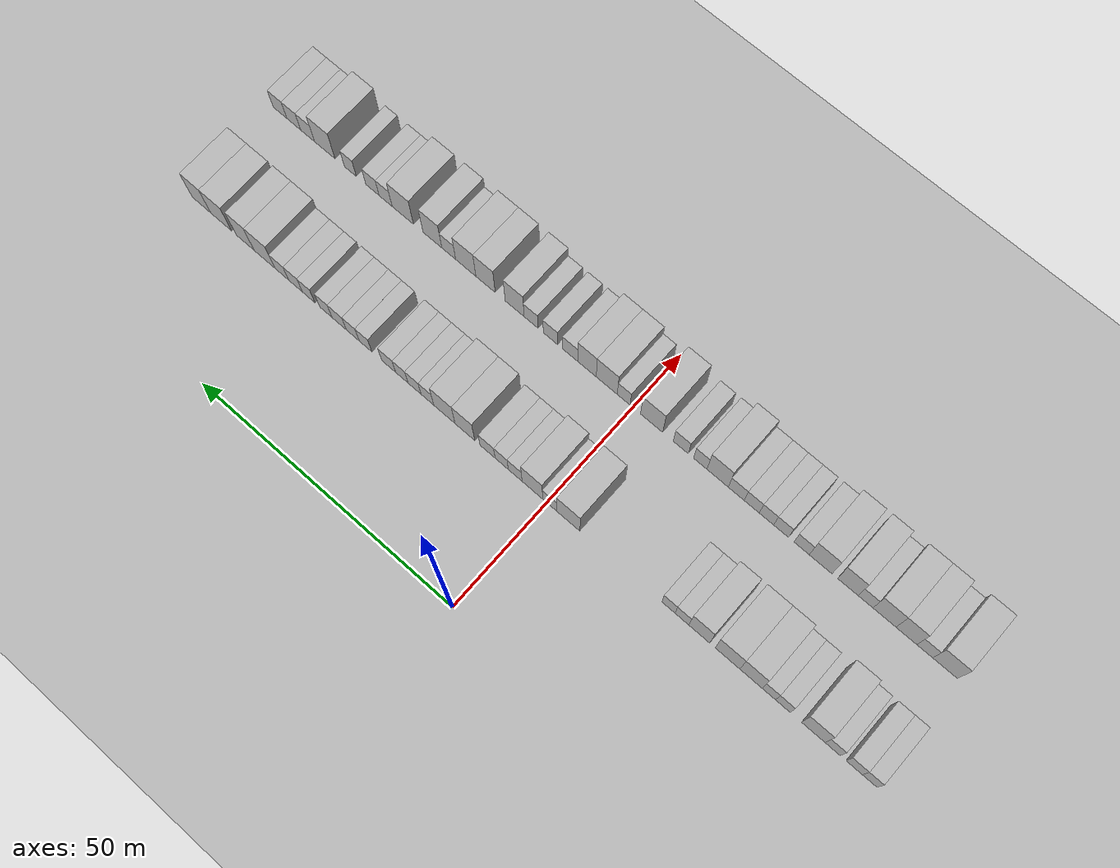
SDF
<sdf version="1.6">
 <world name="default">
  <include><name>ground_plane_1</name><uri>model://HANNAS_ground_plane</uri></include>
  <include>
   <name>ground_plane_2</name>
   <uri>model://HANNAS_ground_plane</uri>
   <pose>100 0 0  0 0 0</pose>
  </include>
  <model name="building_38">
   <static>1</static>
   <pose>25.0000 -58.9693 0 0.000000 0.000000 0.000000</pose>
   <link name="link">
    <pose>0 0 3.00 0 0 0</pose>
    <collision name="collision"><geometry><box><size>10.0000 2.5316 6.0000</size></box></geometry></collision>
    <visual name="visual">
     <cast_shadows>0</cast_shadows>
     <geometry><box><size>10.0000 2.5316 6.0000</size></box></geometry>
     <material>
      <script>
       <uri>model://HANNAS_wall/materials/scripts</uri>
       <uri>model://HANNAS_wall/materials/textures</uri>
       <name>vrc/HANNAS_wall</name>
      </script>
     </material>
    </visual>
   </link>
  </model>
  <model name="building_39">
   <static>1</static>
   <pose>25.0000 -56.2796 0 0.000000 0.000000 0.000000</pose>
   <link name="link">
    <pose>0 0 3.00 0 0 0</pose>
    <collision name="collision"><geometry><box><size>10.0000 2.8477 6.0000</size></box></geometry></collision>
    <visual name="visual">
     <cast_shadows>0</cast_shadows>
     <geometry><box><size>10.0000 2.8477 6.0000</size></box></geometry>
     <material>
      <script>
       <uri>model://HANNAS_wall/materials/scripts</uri>
       <uri>model://HANNAS_wall/materials/textures</uri>
       <name>vrc/HANNAS_wall</name>
      </script>
     </material>
    </visual>
   </link>
  </model>
  <model name="building_40">
   <static>1</static>
   <pose>25.0000 -52.5273 0 0.000000 0.000000 0.000000</pose>
   <link name="link">
    <pose>0 0 3.00 0 0 0</pose>
    <collision name="collision"><geometry><box><size>10.0000 2.6569 6.0000</size></box></geometry></collision>
    <visual name="visual">
     <cast_shadows>0</cast_shadows>
     <geometry><box><size>10.0000 2.6569 6.0000</size></box></geometry>
     <material>
      <script>
       <uri>model://HANNAS_wall/materials/scripts</uri>
       <uri>model://HANNAS_wall/materials/textures</uri>
       <name>vrc/HANNAS_wall</name>
      </script>
     </material>
    </visual>
   </link>
  </model>
  <model name="building_41">
   <static>1</static>
   <pose>25.0000 -49.1151 0 0.000000 0.000000 0.000000</pose>
   <link name="link">
    <pose>0 0 4.50 0 0 0</pose>
    <collision name="collision"><geometry><box><size>10.0000 4.1675 9.0000</size></box></geometry></collision>
    <visual name="visual">
     <cast_shadows>0</cast_shadows>
     <geometry><box><size>10.0000 4.1675 9.0000</size></box></geometry>
     <material>
      <script>
       <uri>model://HANNAS_wall/materials/scripts</uri>
       <uri>model://HANNAS_wall/materials/textures</uri>
       <name>vrc/HANNAS_wall</name>
      </script>
     </material>
    </visual>
   </link>
  </model>
  <model name="building_42">
   <static>1</static>
   <pose>25.0000 -43.7156 0 0.000000 0.000000 0.000000</pose>
   <link name="link">
    <pose>0 0 3.00 0 0 0</pose>
    <collision name="collision"><geometry><box><size>10.0000 2.6314 6.0000</size></box></geometry></collision>
    <visual name="visual">
     <cast_shadows>0</cast_shadows>
     <geometry><box><size>10.0000 2.6314 6.0000</size></box></geometry>
     <material>
      <script>
       <uri>model://HANNAS_wall/materials/scripts</uri>
       <uri>model://HANNAS_wall/materials/textures</uri>
       <name>vrc/HANNAS_wall</name>
      </script>
     </material>
    </visual>
   </link>
  </model>
  <model name="building_43">
   <static>1</static>
   <pose>25.0000 -41.1947 0 0.000000 0.000000 0.000000</pose>
   <link name="link">
    <pose>0 0 3.00 0 0 0</pose>
    <collision name="collision"><geometry><box><size>10.0000 2.4105 6.0000</size></box></geometry></collision>
    <visual name="visual">
     <cast_shadows>0</cast_shadows>
     <geometry><box><size>10.0000 2.4105 6.0000</size></box></geometry>
     <material>
      <script>
       <uri>model://HANNAS_wall/materials/scripts</uri>
       <uri>model://HANNAS_wall/materials/textures</uri>
       <name>vrc/HANNAS_wall</name>
      </script>
     </material>
    </visual>
   </link>
  </model>
  <model name="building_44">
   <static>1</static>
   <pose>25.0000 -37.9845 0 0.000000 0.000000 0.000000</pose>
   <link name="link">
    <pose>0 0 4.50 0 0 0</pose>
    <collision name="collision"><geometry><box><size>10.0000 4.0098 9.0000</size></box></geometry></collision>
    <visual name="visual">
     <cast_shadows>0</cast_shadows>
     <geometry><box><size>10.0000 4.0098 9.0000</size></box></geometry>
     <material>
      <script>
       <uri>model://HANNAS_wall/materials/scripts</uri>
       <uri>model://HANNAS_wall/materials/textures</uri>
       <name>vrc/HANNAS_wall</name>
      </script>
     </material>
    </visual>
   </link>
  </model>
  <model name="building_45">
   <static>1</static>
   <pose>25.0000 -33.7493 0 0.000000 0.000000 0.000000</pose>
   <link name="link">
    <pose>0 0 4.50 0 0 0</pose>
    <collision name="collision"><geometry><box><size>10.0000 4.4606 9.0000</size></box></geometry></collision>
    <visual name="visual">
     <cast_shadows>0</cast_shadows>
     <geometry><box><size>10.0000 4.4606 9.0000</size></box></geometry>
     <material>
      <script>
       <uri>model://HANNAS_wall/materials/scripts</uri>
       <uri>model://HANNAS_wall/materials/textures</uri>
       <name>vrc/HANNAS_wall</name>
      </script>
     </material>
    </visual>
   </link>
  </model>
  <model name="building_46">
   <static>1</static>
   <pose>25.0000 -28.6179 0 0.000000 0.000000 0.000000</pose>
   <link name="link">
    <pose>0 0 4.50 0 0 0</pose>
    <collision name="collision"><geometry><box><size>10.0000 3.8022 9.0000</size></box></geometry></collision>
    <visual name="visual">
     <cast_shadows>0</cast_shadows>
     <geometry><box><size>10.0000 3.8022 9.0000</size></box></geometry>
     <material>
      <script>
       <uri>model://HANNAS_wall/materials/scripts</uri>
       <uri>model://HANNAS_wall/materials/textures</uri>
       <name>vrc/HANNAS_wall</name>
      </script>
     </material>
    </visual>
   </link>
  </model>
  <model name="building_47">
   <static>1</static>
   <pose>25.0000 -25.4377 0 0.000000 0.000000 0.000000</pose>
   <link name="link">
    <pose>0 0 3.00 0 0 0</pose>
    <collision name="collision"><geometry><box><size>10.0000 2.5583 6.0000</size></box></geometry></collision>
    <visual name="visual">
     <cast_shadows>0</cast_shadows>
     <geometry><box><size>10.0000 2.5583 6.0000</size></box></geometry>
     <material>
      <script>
       <uri>model://HANNAS_wall/materials/scripts</uri>
       <uri>model://HANNAS_wall/materials/textures</uri>
       <name>vrc/HANNAS_wall</name>
      </script>
     </material>
    </visual>
   </link>
  </model>
  <model name="building_48">
   <static>1</static>
   <pose>25.0000 -22.9423 0 0.000000 0.000000 0.000000</pose>
   <link name="link">
    <pose>0 0 3.00 0 0 0</pose>
    <collision name="collision"><geometry><box><size>10.0000 2.4326 6.0000</size></box></geometry></collision>
    <visual name="visual">
     <cast_shadows>0</cast_shadows>
     <geometry><box><size>10.0000 2.4326 6.0000</size></box></geometry>
     <material>
      <script>
       <uri>model://HANNAS_wall/materials/scripts</uri>
       <uri>model://HANNAS_wall/materials/textures</uri>
       <name>vrc/HANNAS_wall</name>
      </script>
     </material>
    </visual>
   </link>
  </model>
  <model name="building_49">
   <static>1</static>
   <pose>25.0000 -4.1322 0 0.000000 0.000000 0.000000</pose>
   <link name="link">
    <pose>0 0 4.50 0 0 0</pose>
    <collision name="collision"><geometry><box><size>10.0000 4.3958 9.0000</size></box></geometry></collision>
    <visual name="visual">
     <cast_shadows>0</cast_shadows>
     <geometry><box><size>10.0000 4.3958 9.0000</size></box></geometry>
     <material>
      <script>
       <uri>model://HANNAS_wall/materials/scripts</uri>
       <uri>model://HANNAS_wall/materials/textures</uri>
       <name>vrc/HANNAS_wall</name>
      </script>
     </material>
    </visual>
   </link>
  </model>
  <model name="building_50">
   <static>1</static>
   <pose>25.0000 -0.5826 0 0.000000 0.000000 0.000000</pose>
   <link name="link">
    <pose>0 0 3.00 0 0 0</pose>
    <collision name="collision"><geometry><box><size>10.0000 2.7035 6.0000</size></box></geometry></collision>
    <visual name="visual">
     <cast_shadows>0</cast_shadows>
     <geometry><box><size>10.0000 2.7035 6.0000</size></box></geometry>
     <material>
      <script>
       <uri>model://HANNAS_wall/materials/scripts</uri>
       <uri>model://HANNAS_wall/materials/textures</uri>
       <name>vrc/HANNAS_wall</name>
      </script>
     </material>
    </visual>
   </link>
  </model>
  <model name="building_51">
   <static>1</static>
   <pose>25.0000 2.7589 0 0.000000 0.000000 0.000000</pose>
   <link name="link">
    <pose>0 0 4.50 0 0 0</pose>
    <collision name="collision"><geometry><box><size>10.0000 3.9795 9.0000</size></box></geometry></collision>
    <visual name="visual">
     <cast_shadows>0</cast_shadows>
     <geometry><box><size>10.0000 3.9795 9.0000</size></box></geometry>
     <material>
      <script>
       <uri>model://HANNAS_wall/materials/scripts</uri>
       <uri>model://HANNAS_wall/materials/textures</uri>
       <name>vrc/HANNAS_wall</name>
      </script>
     </material>
    </visual>
   </link>
  </model>
  <model name="building_52">
   <static>1</static>
   <pose>25.0000 6.0873 0 0.000000 0.000000 0.000000</pose>
   <link name="link">
    <pose>0 0 3.00 0 0 0</pose>
    <collision name="collision"><geometry><box><size>10.0000 2.6772 6.0000</size></box></geometry></collision>
    <visual name="visual">
     <cast_shadows>0</cast_shadows>
     <geometry><box><size>10.0000 2.6772 6.0000</size></box></geometry>
     <material>
      <script>
       <uri>model://HANNAS_wall/materials/scripts</uri>
       <uri>model://HANNAS_wall/materials/textures</uri>
       <name>vrc/HANNAS_wall</name>
      </script>
     </material>
    </visual>
   </link>
  </model>
  <model name="building_53">
   <static>1</static>
   <pose>25.0000 8.7115 0 0.000000 0.000000 0.000000</pose>
   <link name="link">
    <pose>0 0 3.00 0 0 0</pose>
    <collision name="collision"><geometry><box><size>10.0000 2.5713 6.0000</size></box></geometry></collision>
    <visual name="visual">
     <cast_shadows>0</cast_shadows>
     <geometry><box><size>10.0000 2.5713 6.0000</size></box></geometry>
     <material>
      <script>
       <uri>model://HANNAS_wall/materials/scripts</uri>
       <uri>model://HANNAS_wall/materials/textures</uri>
       <name>vrc/HANNAS_wall</name>
      </script>
     </material>
    </visual>
   </link>
  </model>
  <model name="building_54">
   <static>1</static>
   <pose>25.0000 11.4802 0 0.000000 0.000000 0.000000</pose>
   <link name="link">
    <pose>0 0 3.00 0 0 0</pose>
    <collision name="collision"><geometry><box><size>10.0000 2.9660 6.0000</size></box></geometry></collision>
    <visual name="visual">
     <cast_shadows>0</cast_shadows>
     <geometry><box><size>10.0000 2.9660 6.0000</size></box></geometry>
     <material>
      <script>
       <uri>model://HANNAS_wall/materials/scripts</uri>
       <uri>model://HANNAS_wall/materials/textures</uri>
       <name>vrc/HANNAS_wall</name>
      </script>
     </material>
    </visual>
   </link>
  </model>
  <model name="building_55">
   <static>1</static>
   <pose>25.0000 15.9163 0 0.000000 0.000000 0.000000</pose>
   <link name="link">
    <pose>0 0 4.50 0 0 0</pose>
    <collision name="collision"><geometry><box><size>10.0000 3.9062 9.0000</size></box></geometry></collision>
    <visual name="visual">
     <cast_shadows>0</cast_shadows>
     <geometry><box><size>10.0000 3.9062 9.0000</size></box></geometry>
     <material>
      <script>
       <uri>model://HANNAS_wall/materials/scripts</uri>
       <uri>model://HANNAS_wall/materials/textures</uri>
       <name>vrc/HANNAS_wall</name>
      </script>
     </material>
    </visual>
   </link>
  </model>
  <model name="building_56">
   <static>1</static>
   <pose>25.0000 19.9657 0 0.000000 0.000000 0.000000</pose>
   <link name="link">
    <pose>0 0 4.50 0 0 0</pose>
    <collision name="collision"><geometry><box><size>10.0000 4.1926 9.0000</size></box></geometry></collision>
    <visual name="visual">
     <cast_shadows>0</cast_shadows>
     <geometry><box><size>10.0000 4.1926 9.0000</size></box></geometry>
     <material>
      <script>
       <uri>model://HANNAS_wall/materials/scripts</uri>
       <uri>model://HANNAS_wall/materials/textures</uri>
       <name>vrc/HANNAS_wall</name>
      </script>
     </material>
    </visual>
   </link>
  </model>
  <model name="building_57">
   <static>1</static>
   <pose>25.0000 23.3356 0 0.000000 0.000000 0.000000</pose>
   <link name="link">
    <pose>0 0 3.00 0 0 0</pose>
    <collision name="collision"><geometry><box><size>10.0000 2.5472 6.0000</size></box></geometry></collision>
    <visual name="visual">
     <cast_shadows>0</cast_shadows>
     <geometry><box><size>10.0000 2.5472 6.0000</size></box></geometry>
     <material>
      <script>
       <uri>model://HANNAS_wall/materials/scripts</uri>
       <uri>model://HANNAS_wall/materials/textures</uri>
       <name>vrc/HANNAS_wall</name>
      </script>
     </material>
    </visual>
   </link>
  </model>
  <model name="building_58">
   <static>1</static>
   <pose>25.0000 25.9146 0 0.000000 0.000000 0.000000</pose>
   <link name="link">
    <pose>0 0 3.00 0 0 0</pose>
    <collision name="collision"><geometry><box><size>10.0000 2.6108 6.0000</size></box></geometry></collision>
    <visual name="visual">
     <cast_shadows>0</cast_shadows>
     <geometry><box><size>10.0000 2.6108 6.0000</size></box></geometry>
     <material>
      <script>
       <uri>model://HANNAS_wall/materials/scripts</uri>
       <uri>model://HANNAS_wall/materials/textures</uri>
       <name>vrc/HANNAS_wall</name>
      </script>
     </material>
    </visual>
   </link>
  </model>
  <model name="building_59">
   <static>1</static>
   <pose>25.0000 28.4655 0 0.000000 0.000000 0.000000</pose>
   <link name="link">
    <pose>0 0 3.00 0 0 0</pose>
    <collision name="collision"><geometry><box><size>10.0000 2.4911 6.0000</size></box></geometry></collision>
    <visual name="visual">
     <cast_shadows>0</cast_shadows>
     <geometry><box><size>10.0000 2.4911 6.0000</size></box></geometry>
     <material>
      <script>
       <uri>model://HANNAS_wall/materials/scripts</uri>
       <uri>model://HANNAS_wall/materials/textures</uri>
       <name>vrc/HANNAS_wall</name>
      </script>
     </material>
    </visual>
   </link>
  </model>
  <model name="building_60">
   <static>1</static>
   <pose>25.0000 31.1306 0 0.000000 0.000000 0.000000</pose>
   <link name="link">
    <pose>0 0 3.00 0 0 0</pose>
    <collision name="collision"><geometry><box><size>10.0000 2.8390 6.0000</size></box></geometry></collision>
    <visual name="visual">
     <cast_shadows>0</cast_shadows>
     <geometry><box><size>10.0000 2.8390 6.0000</size></box></geometry>
     <material>
      <script>
       <uri>model://HANNAS_wall/materials/scripts</uri>
       <uri>model://HANNAS_wall/materials/textures</uri>
       <name>vrc/HANNAS_wall</name>
      </script>
     </material>
    </visual>
   </link>
  </model>
  <model name="building_61">
   <static>1</static>
   <pose>25.0000 35.8308 0 0.000000 0.000000 0.000000</pose>
   <link name="link">
    <pose>0 0 3.00 0 0 0</pose>
    <collision name="collision"><geometry><box><size>10.0000 2.5614 6.0000</size></box></geometry></collision>
    <visual name="visual">
     <cast_shadows>0</cast_shadows>
     <geometry><box><size>10.0000 2.5614 6.0000</size></box></geometry>
     <material>
      <script>
       <uri>model://HANNAS_wall/materials/scripts</uri>
       <uri>model://HANNAS_wall/materials/textures</uri>
       <name>vrc/HANNAS_wall</name>
      </script>
     </material>
    </visual>
   </link>
  </model>
  <model name="building_62">
   <static>1</static>
   <pose>25.0000 38.4246 0 0.000000 0.000000 0.000000</pose>
   <link name="link">
    <pose>0 0 3.00 0 0 0</pose>
    <collision name="collision"><geometry><box><size>10.0000 2.6260 6.0000</size></box></geometry></collision>
    <visual name="visual">
     <cast_shadows>0</cast_shadows>
     <geometry><box><size>10.0000 2.6260 6.0000</size></box></geometry>
     <material>
      <script>
       <uri>model://HANNAS_wall/materials/scripts</uri>
       <uri>model://HANNAS_wall/materials/textures</uri>
       <name>vrc/HANNAS_wall</name>
      </script>
     </material>
    </visual>
   </link>
  </model>
  <model name="building_63">
   <static>1</static>
   <pose>25.0000 41.2061 0 0.000000 0.000000 0.000000</pose>
   <link name="link">
    <pose>0 0 3.00 0 0 0</pose>
    <collision name="collision"><geometry><box><size>10.0000 2.9372 6.0000</size></box></geometry></collision>
    <visual name="visual">
     <cast_shadows>0</cast_shadows>
     <geometry><box><size>10.0000 2.9372 6.0000</size></box></geometry>
     <material>
      <script>
       <uri>model://HANNAS_wall/materials/scripts</uri>
       <uri>model://HANNAS_wall/materials/textures</uri>
       <name>vrc/HANNAS_wall</name>
      </script>
     </material>
    </visual>
   </link>
  </model>
  <model name="building_64">
   <static>1</static>
   <pose>25.0000 43.9478 0 0.000000 0.000000 0.000000</pose>
   <link name="link">
    <pose>0 0 3.00 0 0 0</pose>
    <collision name="collision"><geometry><box><size>10.0000 2.5462 6.0000</size></box></geometry></collision>
    <visual name="visual">
     <cast_shadows>0</cast_shadows>
     <geometry><box><size>10.0000 2.5462 6.0000</size></box></geometry>
     <material>
      <script>
       <uri>model://HANNAS_wall/materials/scripts</uri>
       <uri>model://HANNAS_wall/materials/textures</uri>
       <name>vrc/HANNAS_wall</name>
      </script>
     </material>
    </visual>
   </link>
  </model>
  <model name="building_65">
   <static>1</static>
   <pose>25.0000 47.5077 0 0.000000 0.000000 0.000000</pose>
   <link name="link">
    <pose>0 0 3.00 0 0 0</pose>
    <collision name="collision"><geometry><box><size>10.0000 2.5735 6.0000</size></box></geometry></collision>
    <visual name="visual">
     <cast_shadows>0</cast_shadows>
     <geometry><box><size>10.0000 2.5735 6.0000</size></box></geometry>
     <material>
      <script>
       <uri>model://HANNAS_wall/materials/scripts</uri>
       <uri>model://HANNAS_wall/materials/textures</uri>
       <name>vrc/HANNAS_wall</name>
      </script>
     </material>
    </visual>
   </link>
  </model>
  <model name="building_66">
   <static>1</static>
   <pose>25.0000 50.2321 0 0.000000 0.000000 0.000000</pose>
   <link name="link">
    <pose>0 0 3.00 0 0 0</pose>
    <collision name="collision"><geometry><box><size>10.0000 2.8752 6.0000</size></box></geometry></collision>
    <visual name="visual">
     <cast_shadows>0</cast_shadows>
     <geometry><box><size>10.0000 2.8752 6.0000</size></box></geometry>
     <material>
      <script>
       <uri>model://HANNAS_wall/materials/scripts</uri>
       <uri>model://HANNAS_wall/materials/textures</uri>
       <name>vrc/HANNAS_wall</name>
      </script>
     </material>
    </visual>
   </link>
  </model>
  <model name="building_67">
   <static>1</static>
   <pose>25.0000 53.1093 0 0.000000 0.000000 0.000000</pose>
   <link name="link">
    <pose>0 0 3.00 0 0 0</pose>
    <collision name="collision"><geometry><box><size>10.0000 2.8793 6.0000</size></box></geometry></collision>
    <visual name="visual">
     <cast_shadows>0</cast_shadows>
     <geometry><box><size>10.0000 2.8793 6.0000</size></box></geometry>
     <material>
      <script>
       <uri>model://HANNAS_wall/materials/scripts</uri>
       <uri>model://HANNAS_wall/materials/textures</uri>
       <name>vrc/HANNAS_wall</name>
      </script>
     </material>
    </visual>
   </link>
  </model>
  <model name="building_68">
   <static>1</static>
   <pose>25.0000 56.7665 0 0.000000 0.000000 0.000000</pose>
   <link name="link">
    <pose>0 0 4.50 0 0 0</pose>
    <collision name="collision"><geometry><box><size>10.0000 4.4350 9.0000</size></box></geometry></collision>
    <visual name="visual">
     <cast_shadows>0</cast_shadows>
     <geometry><box><size>10.0000 4.4350 9.0000</size></box></geometry>
     <material>
      <script>
       <uri>model://HANNAS_wall/materials/scripts</uri>
       <uri>model://HANNAS_wall/materials/textures</uri>
       <name>vrc/HANNAS_wall</name>
      </script>
     </material>
    </visual>
   </link>
  </model>
  <model name="building_69">
   <static>1</static>
   <pose>25.0000 60.8629 0 0.000000 0.000000 0.000000</pose>
   <link name="link">
    <pose>0 0 4.50 0 0 0</pose>
    <collision name="collision"><geometry><box><size>10.0000 3.7578 9.0000</size></box></geometry></collision>
    <visual name="visual">
     <cast_shadows>0</cast_shadows>
     <geometry><box><size>10.0000 3.7578 9.0000</size></box></geometry>
     <material>
      <script>
       <uri>model://HANNAS_wall/materials/scripts</uri>
       <uri>model://HANNAS_wall/materials/textures</uri>
       <name>vrc/HANNAS_wall</name>
      </script>
     </material>
    </visual>
   </link>
  </model>
  <model name="building_70">
   <static>1</static>
   <pose>25.0000 65.9792 0 0.000000 0.000000 0.000000</pose>
   <link name="link">
    <pose>0 0 4.50 0 0 0</pose>
    <collision name="collision"><geometry><box><size>10.0000 4.4748 9.0000</size></box></geometry></collision>
    <visual name="visual">
     <cast_shadows>0</cast_shadows>
     <geometry><box><size>10.0000 4.4748 9.0000</size></box></geometry>
     <material>
      <script>
       <uri>model://HANNAS_wall/materials/scripts</uri>
       <uri>model://HANNAS_wall/materials/textures</uri>
       <name>vrc/HANNAS_wall</name>
      </script>
     </material>
    </visual>
   </link>
  </model>
  <model name="building_71">
   <static>1</static>
   <pose>25.0000 70.2125 0 0.000000 0.000000 0.000000</pose>
   <link name="link">
    <pose>0 0 4.50 0 0 0</pose>
    <collision name="collision"><geometry><box><size>10.0000 3.9920 9.0000</size></box></geometry></collision>
    <visual name="visual">
     <cast_shadows>0</cast_shadows>
     <geometry><box><size>10.0000 3.9920 9.0000</size></box></geometry>
     <material>
      <script>
       <uri>model://HANNAS_wall/materials/scripts</uri>
       <uri>model://HANNAS_wall/materials/textures</uri>
       <name>vrc/HANNAS_wall</name>
      </script>
     </material>
    </visual>
   </link>
  </model>
  <model name="building_138">
   <static>1</static>
   <pose>44.0000 -57.4191 0 0.000000 0.000000 0.000000</pose>
   <link name="link">
    <pose>0 0 4.50 0 0 0</pose>
    <collision name="collision"><geometry><box><size>10.0000 4.3302 9.0000</size></box></geometry></collision>
    <visual name="visual">
     <cast_shadows>0</cast_shadows>
     <geometry><box><size>10.0000 4.3302 9.0000</size></box></geometry>
     <material>
      <script>
       <uri>model://HANNAS_wall/materials/scripts</uri>
       <uri>model://HANNAS_wall/materials/textures</uri>
       <name>vrc/HANNAS_wall</name>
      </script>
     </material>
    </visual>
   </link>
  </model>
  <model name="building_139">
   <static>1</static>
   <pose>44.0000 -53.8535 0 0.000000 0.000000 0.000000</pose>
   <link name="link">
    <pose>0 0 3.00 0 0 0</pose>
    <collision name="collision"><geometry><box><size>10.0000 2.8010 6.0000</size></box></geometry></collision>
    <visual name="visual">
     <cast_shadows>0</cast_shadows>
     <geometry><box><size>10.0000 2.8010 6.0000</size></box></geometry>
     <material>
      <script>
       <uri>model://HANNAS_wall/materials/scripts</uri>
       <uri>model://HANNAS_wall/materials/textures</uri>
       <name>vrc/HANNAS_wall</name>
      </script>
     </material>
    </visual>
   </link>
  </model>
  <model name="building_140">
   <static>1</static>
   <pose>44.0000 -50.6065 0 0.000000 0.000000 0.000000</pose>
   <link name="link">
    <pose>0 0 4.50 0 0 0</pose>
    <collision name="collision"><geometry><box><size>10.0000 3.6931 9.0000</size></box></geometry></collision>
    <visual name="visual">
     <cast_shadows>0</cast_shadows>
     <geometry><box><size>10.0000 3.6931 9.0000</size></box></geometry>
     <material>
      <script>
       <uri>model://HANNAS_wall/materials/scripts</uri>
       <uri>model://HANNAS_wall/materials/textures</uri>
       <name>vrc/HANNAS_wall</name>
      </script>
     </material>
    </visual>
   </link>
  </model>
  <model name="building_141">
   <static>1</static>
   <pose>44.0000 -46.7105 0 0.000000 0.000000 0.000000</pose>
   <link name="link">
    <pose>0 0 4.50 0 0 0</pose>
    <collision name="collision"><geometry><box><size>10.0000 4.0988 9.0000</size></box></geometry></collision>
    <visual name="visual">
     <cast_shadows>0</cast_shadows>
     <geometry><box><size>10.0000 4.0988 9.0000</size></box></geometry>
     <material>
      <script>
       <uri>model://HANNAS_wall/materials/scripts</uri>
       <uri>model://HANNAS_wall/materials/textures</uri>
       <name>vrc/HANNAS_wall</name>
      </script>
     </material>
    </visual>
   </link>
  </model>
  <model name="building_142">
   <static>1</static>
   <pose>44.0000 -43.3327 0 0.000000 0.000000 0.000000</pose>
   <link name="link">
    <pose>0 0 3.00 0 0 0</pose>
    <collision name="collision"><geometry><box><size>10.0000 2.6569 6.0000</size></box></geometry></collision>
    <visual name="visual">
     <cast_shadows>0</cast_shadows>
     <geometry><box><size>10.0000 2.6569 6.0000</size></box></geometry>
     <material>
      <script>
       <uri>model://HANNAS_wall/materials/scripts</uri>
       <uri>model://HANNAS_wall/materials/textures</uri>
       <name>vrc/HANNAS_wall</name>
      </script>
     </material>
    </visual>
   </link>
  </model>
  <model name="building_143">
   <static>1</static>
   <pose>44.0000 -40.1524 0 0.000000 0.000000 0.000000</pose>
   <link name="link">
    <pose>0 0 4.50 0 0 0</pose>
    <collision name="collision"><geometry><box><size>10.0000 3.7035 9.0000</size></box></geometry></collision>
    <visual name="visual">
     <cast_shadows>0</cast_shadows>
     <geometry><box><size>10.0000 3.7035 9.0000</size></box></geometry>
     <material>
      <script>
       <uri>model://HANNAS_wall/materials/scripts</uri>
       <uri>model://HANNAS_wall/materials/textures</uri>
       <name>vrc/HANNAS_wall</name>
      </script>
     </material>
    </visual>
   </link>
  </model>
  <model name="building_144">
   <static>1</static>
   <pose>44.0000 -35.2264 0 0.000000 0.000000 0.000000</pose>
   <link name="link">
    <pose>0 0 4.50 0 0 0</pose>
    <collision name="collision"><geometry><box><size>10.0000 4.1486 9.0000</size></box></geometry></collision>
    <visual name="visual">
     <cast_shadows>0</cast_shadows>
     <geometry><box><size>10.0000 4.1486 9.0000</size></box></geometry>
     <material>
      <script>
       <uri>model://HANNAS_wall/materials/scripts</uri>
       <uri>model://HANNAS_wall/materials/textures</uri>
       <name>vrc/HANNAS_wall</name>
      </script>
     </material>
    </visual>
   </link>
  </model>
  <model name="building_145">
   <static>1</static>
   <pose>44.0000 -31.7477 0 0.000000 0.000000 0.000000</pose>
   <link name="link">
    <pose>0 0 3.00 0 0 0</pose>
    <collision name="collision"><geometry><box><size>10.0000 2.8086 6.0000</size></box></geometry></collision>
    <visual name="visual">
     <cast_shadows>0</cast_shadows>
     <geometry><box><size>10.0000 2.8086 6.0000</size></box></geometry>
     <material>
      <script>
       <uri>model://HANNAS_wall/materials/scripts</uri>
       <uri>model://HANNAS_wall/materials/textures</uri>
       <name>vrc/HANNAS_wall</name>
      </script>
     </material>
    </visual>
   </link>
  </model>
  <model name="building_146">
   <static>1</static>
   <pose>44.0000 -27.9752 0 0.000000 0.000000 0.000000</pose>
   <link name="link">
    <pose>0 0 3.00 0 0 0</pose>
    <collision name="collision"><geometry><box><size>10.0000 2.7364 6.0000</size></box></geometry></collision>
    <visual name="visual">
     <cast_shadows>0</cast_shadows>
     <geometry><box><size>10.0000 2.7364 6.0000</size></box></geometry>
     <material>
      <script>
       <uri>model://HANNAS_wall/materials/scripts</uri>
       <uri>model://HANNAS_wall/materials/textures</uri>
       <name>vrc/HANNAS_wall</name>
      </script>
     </material>
    </visual>
   </link>
  </model>
  <model name="building_147">
   <static>1</static>
   <pose>44.0000 -25.2761 0 0.000000 0.000000 0.000000</pose>
   <link name="link">
    <pose>0 0 3.00 0 0 0</pose>
    <collision name="collision"><geometry><box><size>10.0000 2.6619 6.0000</size></box></geometry></collision>
    <visual name="visual">
     <cast_shadows>0</cast_shadows>
     <geometry><box><size>10.0000 2.6619 6.0000</size></box></geometry>
     <material>
      <script>
       <uri>model://HANNAS_wall/materials/scripts</uri>
       <uri>model://HANNAS_wall/materials/textures</uri>
       <name>vrc/HANNAS_wall</name>
      </script>
     </material>
    </visual>
   </link>
  </model>
  <model name="building_148">
   <static>1</static>
   <pose>44.0000 -22.5445 0 0.000000 0.000000 0.000000</pose>
   <link name="link">
    <pose>0 0 3.00 0 0 0</pose>
    <collision name="collision"><geometry><box><size>10.0000 2.8013 6.0000</size></box></geometry></collision>
    <visual name="visual">
     <cast_shadows>0</cast_shadows>
     <geometry><box><size>10.0000 2.8013 6.0000</size></box></geometry>
     <material>
      <script>
       <uri>model://HANNAS_wall/materials/scripts</uri>
       <uri>model://HANNAS_wall/materials/textures</uri>
       <name>vrc/HANNAS_wall</name>
      </script>
     </material>
    </visual>
   </link>
  </model>
  <model name="building_149">
   <static>1</static>
   <pose>44.0000 -19.6565 0 0.000000 0.000000 0.000000</pose>
   <link name="link">
    <pose>0 0 3.00 0 0 0</pose>
    <collision name="collision"><geometry><box><size>10.0000 2.9746 6.0000</size></box></geometry></collision>
    <visual name="visual">
     <cast_shadows>0</cast_shadows>
     <geometry><box><size>10.0000 2.9746 6.0000</size></box></geometry>
     <material>
      <script>
       <uri>model://HANNAS_wall/materials/scripts</uri>
       <uri>model://HANNAS_wall/materials/textures</uri>
       <name>vrc/HANNAS_wall</name>
      </script>
     </material>
    </visual>
   </link>
  </model>
  <model name="building_150">
   <static>1</static>
   <pose>44.0000 -16.1676 0 0.000000 0.000000 0.000000</pose>
   <link name="link">
    <pose>0 0 4.50 0 0 0</pose>
    <collision name="collision"><geometry><box><size>10.0000 4.0032 9.0000</size></box></geometry></collision>
    <visual name="visual">
     <cast_shadows>0</cast_shadows>
     <geometry><box><size>10.0000 4.0032 9.0000</size></box></geometry>
     <material>
      <script>
       <uri>model://HANNAS_wall/materials/scripts</uri>
       <uri>model://HANNAS_wall/materials/textures</uri>
       <name>vrc/HANNAS_wall</name>
      </script>
     </material>
    </visual>
   </link>
  </model>
  <model name="building_151">
   <static>1</static>
   <pose>44.0000 -12.9016 0 0.000000 0.000000 0.000000</pose>
   <link name="link">
    <pose>0 0 3.00 0 0 0</pose>
    <collision name="collision"><geometry><box><size>10.0000 2.5290 6.0000</size></box></geometry></collision>
    <visual name="visual">
     <cast_shadows>0</cast_shadows>
     <geometry><box><size>10.0000 2.5290 6.0000</size></box></geometry>
     <material>
      <script>
       <uri>model://HANNAS_wall/materials/scripts</uri>
       <uri>model://HANNAS_wall/materials/textures</uri>
       <name>vrc/HANNAS_wall</name>
      </script>
     </material>
    </visual>
   </link>
  </model>
  <model name="building_152">
   <static>1</static>
   <pose>44.0000 -9.1978 0 0.000000 0.000000 0.000000</pose>
   <link name="link">
    <pose>0 0 3.00 0 0 0</pose>
    <collision name="collision"><geometry><box><size>10.0000 2.8784 6.0000</size></box></geometry></collision>
    <visual name="visual">
     <cast_shadows>0</cast_shadows>
     <geometry><box><size>10.0000 2.8784 6.0000</size></box></geometry>
     <material>
      <script>
       <uri>model://HANNAS_wall/materials/scripts</uri>
       <uri>model://HANNAS_wall/materials/textures</uri>
       <name>vrc/HANNAS_wall</name>
      </script>
     </material>
    </visual>
   </link>
  </model>
  <model name="building_153">
   <static>1</static>
   <pose>44.0000 -3.6257 0 0.000000 0.000000 0.000000</pose>
   <link name="link">
    <pose>0 0 4.50 0 0 0</pose>
    <collision name="collision"><geometry><box><size>10.0000 4.2658 9.0000</size></box></geometry></collision>
    <visual name="visual">
     <cast_shadows>0</cast_shadows>
     <geometry><box><size>10.0000 4.2658 9.0000</size></box></geometry>
     <material>
      <script>
       <uri>model://HANNAS_wall/materials/scripts</uri>
       <uri>model://HANNAS_wall/materials/textures</uri>
       <name>vrc/HANNAS_wall</name>
      </script>
     </material>
    </visual>
   </link>
  </model>
  <model name="building_154">
   <static>1</static>
   <pose>44.0000 1.7515 0 0.000000 0.000000 0.000000</pose>
   <link name="link">
    <pose>0 0 3.00 0 0 0</pose>
    <collision name="collision"><geometry><box><size>10.0000 2.4886 6.0000</size></box></geometry></collision>
    <visual name="visual">
     <cast_shadows>0</cast_shadows>
     <geometry><box><size>10.0000 2.4886 6.0000</size></box></geometry>
     <material>
      <script>
       <uri>model://HANNAS_wall/materials/scripts</uri>
       <uri>model://HANNAS_wall/materials/textures</uri>
       <name>vrc/HANNAS_wall</name>
      </script>
     </material>
    </visual>
   </link>
  </model>
  <model name="building_155">
   <static>1</static>
   <pose>44.0000 5.0431 0 0.000000 0.000000 0.000000</pose>
   <link name="link">
    <pose>0 0 4.50 0 0 0</pose>
    <collision name="collision"><geometry><box><size>10.0000 4.0946 9.0000</size></box></geometry></collision>
    <visual name="visual">
     <cast_shadows>0</cast_shadows>
     <geometry><box><size>10.0000 4.0946 9.0000</size></box></geometry>
     <material>
      <script>
       <uri>model://HANNAS_wall/materials/scripts</uri>
       <uri>model://HANNAS_wall/materials/textures</uri>
       <name>vrc/HANNAS_wall</name>
      </script>
     </material>
    </visual>
   </link>
  </model>
  <model name="building_156">
   <static>1</static>
   <pose>44.0000 8.9085 0 0.000000 0.000000 0.000000</pose>
   <link name="link">
    <pose>0 0 4.50 0 0 0</pose>
    <collision name="collision"><geometry><box><size>10.0000 3.6361 9.0000</size></box></geometry></collision>
    <visual name="visual">
     <cast_shadows>0</cast_shadows>
     <geometry><box><size>10.0000 3.6361 9.0000</size></box></geometry>
     <material>
      <script>
       <uri>model://HANNAS_wall/materials/scripts</uri>
       <uri>model://HANNAS_wall/materials/textures</uri>
       <name>vrc/HANNAS_wall</name>
      </script>
     </material>
    </visual>
   </link>
  </model>
  <model name="building_157">
   <static>1</static>
   <pose>44.0000 12.1917 0 0.000000 0.000000 0.000000</pose>
   <link name="link">
    <pose>0 0 3.00 0 0 0</pose>
    <collision name="collision"><geometry><box><size>10.0000 2.9305 6.0000</size></box></geometry></collision>
    <visual name="visual">
     <cast_shadows>0</cast_shadows>
     <geometry><box><size>10.0000 2.9305 6.0000</size></box></geometry>
     <material>
      <script>
       <uri>model://HANNAS_wall/materials/scripts</uri>
       <uri>model://HANNAS_wall/materials/textures</uri>
       <name>vrc/HANNAS_wall</name>
      </script>
     </material>
    </visual>
   </link>
  </model>
  <model name="building_158">
   <static>1</static>
   <pose>44.0000 16.0801 0 0.000000 0.000000 0.000000</pose>
   <link name="link">
    <pose>0 0 3.00 0 0 0</pose>
    <collision name="collision"><geometry><box><size>10.0000 2.8464 6.0000</size></box></geometry></collision>
    <visual name="visual">
     <cast_shadows>0</cast_shadows>
     <geometry><box><size>10.0000 2.8464 6.0000</size></box></geometry>
     <material>
      <script>
       <uri>model://HANNAS_wall/materials/scripts</uri>
       <uri>model://HANNAS_wall/materials/textures</uri>
       <name>vrc/HANNAS_wall</name>
      </script>
     </material>
    </visual>
   </link>
  </model>
  <model name="building_159">
   <static>1</static>
   <pose>44.0000 19.9070 0 0.000000 0.000000 0.000000</pose>
   <link name="link">
    <pose>0 0 3.00 0 0 0</pose>
    <collision name="collision"><geometry><box><size>10.0000 2.8075 6.0000</size></box></geometry></collision>
    <visual name="visual">
     <cast_shadows>0</cast_shadows>
     <geometry><box><size>10.0000 2.8075 6.0000</size></box></geometry>
     <material>
      <script>
       <uri>model://HANNAS_wall/materials/scripts</uri>
       <uri>model://HANNAS_wall/materials/textures</uri>
       <name>vrc/HANNAS_wall</name>
      </script>
     </material>
    </visual>
   </link>
  </model>
  <model name="building_160">
   <static>1</static>
   <pose>44.0000 23.2116 0 0.000000 0.000000 0.000000</pose>
   <link name="link">
    <pose>0 0 4.50 0 0 0</pose>
    <collision name="collision"><geometry><box><size>10.0000 3.8017 9.0000</size></box></geometry></collision>
    <visual name="visual">
     <cast_shadows>0</cast_shadows>
     <geometry><box><size>10.0000 3.8017 9.0000</size></box></geometry>
     <material>
      <script>
       <uri>model://HANNAS_wall/materials/scripts</uri>
       <uri>model://HANNAS_wall/materials/textures</uri>
       <name>vrc/HANNAS_wall</name>
      </script>
     </material>
    </visual>
   </link>
  </model>
  <model name="building_161">
   <static>1</static>
   <pose>44.0000 29.0748 0 0.000000 0.000000 0.000000</pose>
   <link name="link">
    <pose>0 0 4.50 0 0 0</pose>
    <collision name="collision"><geometry><box><size>10.0000 3.9248 9.0000</size></box></geometry></collision>
    <visual name="visual">
     <cast_shadows>0</cast_shadows>
     <geometry><box><size>10.0000 3.9248 9.0000</size></box></geometry>
     <material>
      <script>
       <uri>model://HANNAS_wall/materials/scripts</uri>
       <uri>model://HANNAS_wall/materials/textures</uri>
       <name>vrc/HANNAS_wall</name>
      </script>
     </material>
    </visual>
   </link>
  </model>
  <model name="building_162">
   <static>1</static>
   <pose>44.0000 33.0884 0 0.000000 0.000000 0.000000</pose>
   <link name="link">
    <pose>0 0 4.50 0 0 0</pose>
    <collision name="collision"><geometry><box><size>10.0000 4.1023 9.0000</size></box></geometry></collision>
    <visual name="visual">
     <cast_shadows>0</cast_shadows>
     <geometry><box><size>10.0000 4.1023 9.0000</size></box></geometry>
     <material>
      <script>
       <uri>model://HANNAS_wall/materials/scripts</uri>
       <uri>model://HANNAS_wall/materials/textures</uri>
       <name>vrc/HANNAS_wall</name>
      </script>
     </material>
    </visual>
   </link>
  </model>
  <model name="building_163">
   <static>1</static>
   <pose>44.0000 36.5613 0 0.000000 0.000000 0.000000</pose>
   <link name="link">
    <pose>0 0 3.00 0 0 0</pose>
    <collision name="collision"><geometry><box><size>10.0000 2.8436 6.0000</size></box></geometry></collision>
    <visual name="visual">
     <cast_shadows>0</cast_shadows>
     <geometry><box><size>10.0000 2.8436 6.0000</size></box></geometry>
     <material>
      <script>
       <uri>model://HANNAS_wall/materials/scripts</uri>
       <uri>model://HANNAS_wall/materials/textures</uri>
       <name>vrc/HANNAS_wall</name>
      </script>
     </material>
    </visual>
   </link>
  </model>
  <model name="building_164">
   <static>1</static>
   <pose>44.0000 39.9041 0 0.000000 0.000000 0.000000</pose>
   <link name="link">
    <pose>0 0 4.50 0 0 0</pose>
    <collision name="collision"><geometry><box><size>10.0000 3.8420 9.0000</size></box></geometry></collision>
    <visual name="visual">
     <cast_shadows>0</cast_shadows>
     <geometry><box><size>10.0000 3.8420 9.0000</size></box></geometry>
     <material>
      <script>
       <uri>model://HANNAS_wall/materials/scripts</uri>
       <uri>model://HANNAS_wall/materials/textures</uri>
       <name>vrc/HANNAS_wall</name>
      </script>
     </material>
    </visual>
   </link>
  </model>
  <model name="building_165">
   <static>1</static>
   <pose>44.0000 46.0344 0 0.000000 0.000000 0.000000</pose>
   <link name="link">
    <pose>0 0 4.50 0 0 0</pose>
    <collision name="collision"><geometry><box><size>10.0000 4.4186 9.0000</size></box></geometry></collision>
    <visual name="visual">
     <cast_shadows>0</cast_shadows>
     <geometry><box><size>10.0000 4.4186 9.0000</size></box></geometry>
     <material>
      <script>
       <uri>model://HANNAS_wall/materials/scripts</uri>
       <uri>model://HANNAS_wall/materials/textures</uri>
       <name>vrc/HANNAS_wall</name>
      </script>
     </material>
    </visual>
   </link>
  </model>
  <model name="building_166">
   <static>1</static>
   <pose>44.0000 49.6045 0 0.000000 0.000000 0.000000</pose>
   <link name="link">
    <pose>0 0 3.00 0 0 0</pose>
    <collision name="collision"><geometry><box><size>10.0000 2.7216 6.0000</size></box></geometry></collision>
    <visual name="visual">
     <cast_shadows>0</cast_shadows>
     <geometry><box><size>10.0000 2.7216 6.0000</size></box></geometry>
     <material>
      <script>
       <uri>model://HANNAS_wall/materials/scripts</uri>
       <uri>model://HANNAS_wall/materials/textures</uri>
       <name>vrc/HANNAS_wall</name>
      </script>
     </material>
    </visual>
   </link>
  </model>
  <model name="building_167">
   <static>1</static>
   <pose>44.0000 52.3573 0 0.000000 0.000000 0.000000</pose>
   <link name="link">
    <pose>0 0 3.00 0 0 0</pose>
    <collision name="collision"><geometry><box><size>10.0000 2.7840 6.0000</size></box></geometry></collision>
    <visual name="visual">
     <cast_shadows>0</cast_shadows>
     <geometry><box><size>10.0000 2.7840 6.0000</size></box></geometry>
     <material>
      <script>
       <uri>model://HANNAS_wall/materials/scripts</uri>
       <uri>model://HANNAS_wall/materials/textures</uri>
       <name>vrc/HANNAS_wall</name>
      </script>
     </material>
    </visual>
   </link>
  </model>
  <model name="building_168">
   <static>1</static>
   <pose>44.0000 57.0009 0 0.000000 0.000000 0.000000</pose>
   <link name="link">
    <pose>0 0 3.00 0 0 0</pose>
    <collision name="collision"><geometry><box><size>10.0000 2.5033 6.0000</size></box></geometry></collision>
    <visual name="visual">
     <cast_shadows>0</cast_shadows>
     <geometry><box><size>10.0000 2.5033 6.0000</size></box></geometry>
     <material>
      <script>
       <uri>model://HANNAS_wall/materials/scripts</uri>
       <uri>model://HANNAS_wall/materials/textures</uri>
       <name>vrc/HANNAS_wall</name>
      </script>
     </material>
    </visual>
   </link>
  </model>
  <model name="building_169">
   <static>1</static>
   <pose>44.0000 62.4350 0 0.000000 0.000000 0.000000</pose>
   <link name="link">
    <pose>0 0 4.50 0 0 0</pose>
    <collision name="collision"><geometry><box><size>10.0000 4.3649 9.0000</size></box></geometry></collision>
    <visual name="visual">
     <cast_shadows>0</cast_shadows>
     <geometry><box><size>10.0000 4.3649 9.0000</size></box></geometry>
     <material>
      <script>
       <uri>model://HANNAS_wall/materials/scripts</uri>
       <uri>model://HANNAS_wall/materials/textures</uri>
       <name>vrc/HANNAS_wall</name>
      </script>
     </material>
    </visual>
   </link>
  </model>
  <model name="building_170">
   <static>1</static>
   <pose>44.0000 66.1086 0 0.000000 0.000000 0.000000</pose>
   <link name="link">
    <pose>0 0 3.00 0 0 0</pose>
    <collision name="collision"><geometry><box><size>10.0000 2.9822 6.0000</size></box></geometry></collision>
    <visual name="visual">
     <cast_shadows>0</cast_shadows>
     <geometry><box><size>10.0000 2.9822 6.0000</size></box></geometry>
     <material>
      <script>
       <uri>model://HANNAS_wall/materials/scripts</uri>
       <uri>model://HANNAS_wall/materials/textures</uri>
       <name>vrc/HANNAS_wall</name>
      </script>
     </material>
    </visual>
   </link>
  </model>
  <model name="building_171">
   <static>1</static>
   <pose>44.0000 69.0814 0 0.000000 0.000000 0.000000</pose>
   <link name="link">
    <pose>0 0 3.00 0 0 0</pose>
    <collision name="collision"><geometry><box><size>10.0000 2.9635 6.0000</size></box></geometry></collision>
    <visual name="visual">
     <cast_shadows>0</cast_shadows>
     <geometry><box><size>10.0000 2.9635 6.0000</size></box></geometry>
     <material>
      <script>
       <uri>model://HANNAS_wall/materials/scripts</uri>
       <uri>model://HANNAS_wall/materials/textures</uri>
       <name>vrc/HANNAS_wall</name>
      </script>
     </material>
    </visual>
   </link>
  </model>
  <model name="building_172">
   <static>1</static>
   <pose>44.0000 72.0394 0 0.000000 0.000000 0.000000</pose>
   <link name="link">
    <pose>0 0 3.00 0 0 0</pose>
    <collision name="collision"><geometry><box><size>10.0000 2.9525 6.0000</size></box></geometry></collision>
    <visual name="visual">
     <cast_shadows>0</cast_shadows>
     <geometry><box><size>10.0000 2.9525 6.0000</size></box></geometry>
     <material>
      <script>
       <uri>model://HANNAS_wall/materials/scripts</uri>
       <uri>model://HANNAS_wall/materials/textures</uri>
       <name>vrc/HANNAS_wall</name>
      </script>
     </material>
    </visual>
   </link>
  </model>
 </world>
</sdf>
